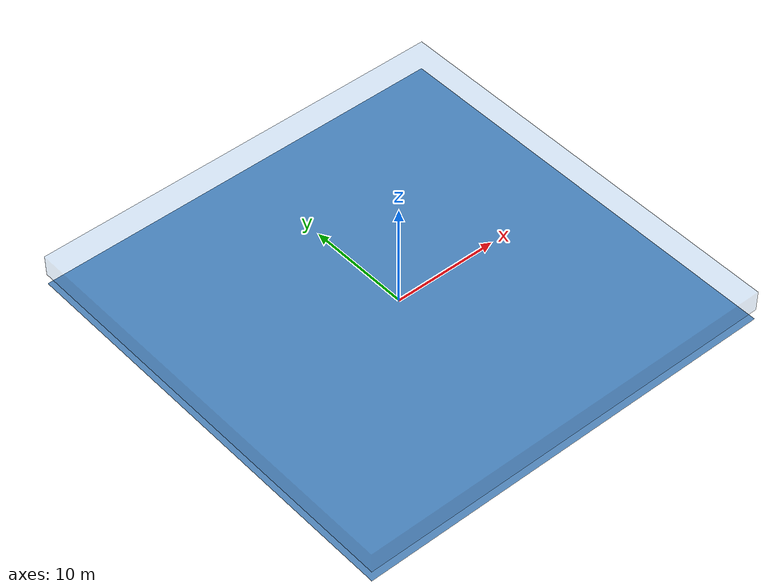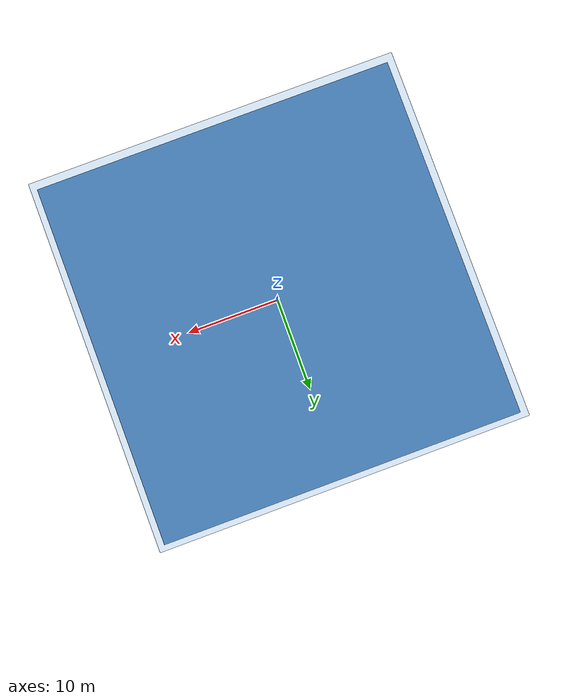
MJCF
<?xml version="1.0"?>
<!-- Underwater environment example -->
<mujoco model="underwater">
  <option timestep="0.002" gravity="0 0 -9.81"/>

  <asset>
    <material name="water" rgba="0.2 0.5 0.8 0.3"/>
  </asset>

  <worldbody>
    <!-- Ground -->
    <geom name="ground" type="plane" size="20 20 0.1" rgba="0.3 0.5 0.7 1"/>

    <!-- Water volume (visual) -->
    <geom name="water_surface" type="box" size="20 20 1" pos="0 0 2"
          rgba="0.2 0.5 0.8 0.2" contype="0" conaffinity="0"/>
  </worldbody>
</mujoco>
